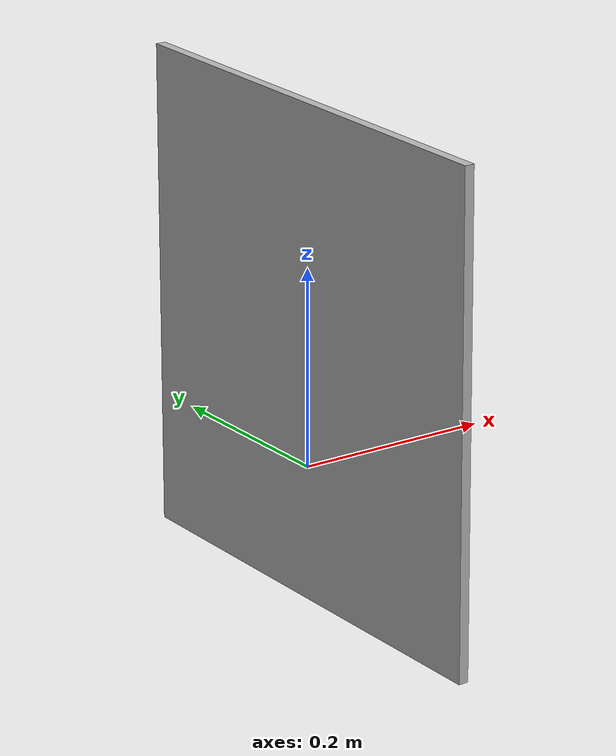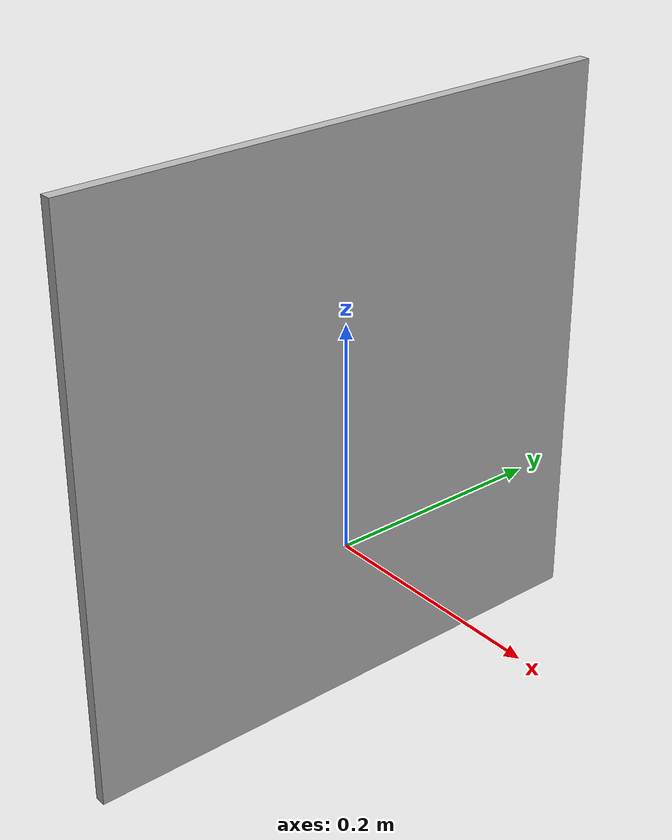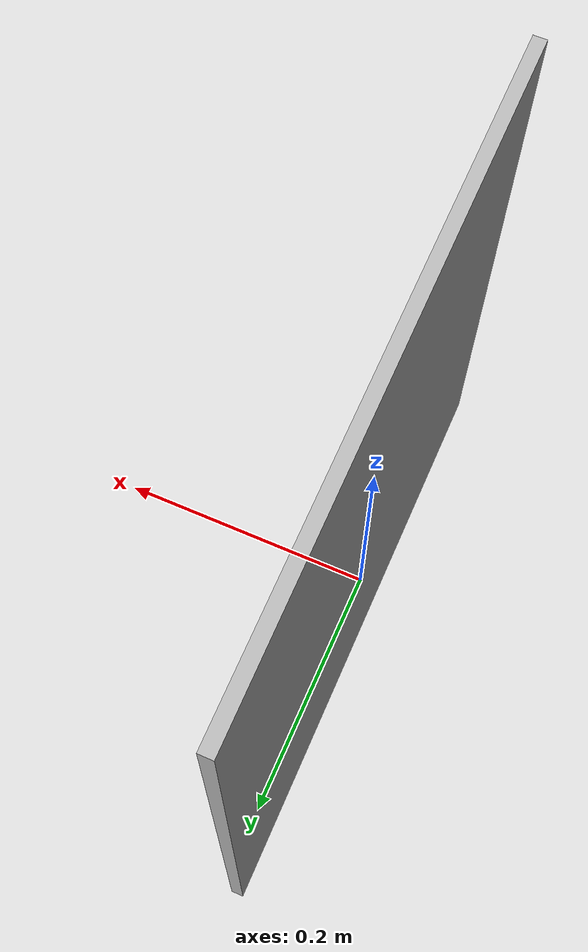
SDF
<?xml version='1.0'?>
<sdf version='1.4'>
  <model name="apriltag">
    <link name='link'>
    <pose>0 0 0.115 0 1.57 0</pose>
      <inertial>
        <mass>0.390</mass>
        <inertia>
          <ixx>0.00058</ixx>
          <ixy>0</ixy>
          <ixz>0</ixz>
          <iyy>0.00058</iyy>
          <iyz>0</iyz>
          <izz>0.00019</izz>
        </inertia>
      </inertial>

      <collision name='collision'>
        <geometry>
                <box>
                  <size>.496 .496 .01</size>
                </box>
        </geometry>
      </collision>

       <visual name='visual'>
        <geometry>
                <box>
                  <size>.496 .496 .01</size>
                </box>
        </geometry>

        <material>
          <script>
            <uri>file:///home/cyun/gazebo_sim_model/gazebo_models/apriltag/materials/scripts</uri>
            <uri>file:///home/cyun/gazebo_sim_model/gazebo_models/apriltag/materials/textures</uri>
            <name>JZX/xk1</name>
          </script>
        </material>
      </visual>
    </link>
  </model>
</sdf>
